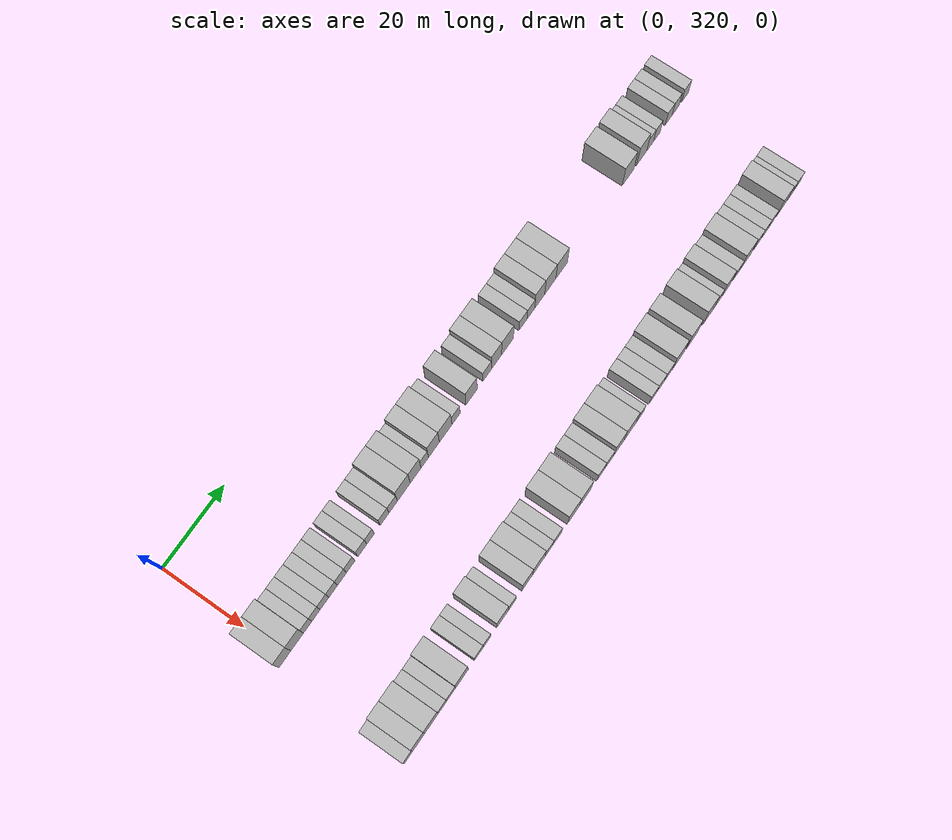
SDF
<sdf version="1.6">
 <world name="default">
  <model name="building_181">
   <static>1</static>
   <pose>25.0000 319.6234 0 0.000000 0.000000 0.000000</pose>
   <link name="link">
    <pose>0 0 4.50 0 0 0</pose>
    <collision name="collision"><geometry><box><size>10.0000 3.8399 9.0000</size></box></geometry></collision>
    <visual name="visual">
     <cast_shadows>0</cast_shadows>
     <geometry><box><size>10.0000 3.8399 9.0000</size></box></geometry>
     <material>
      <script>
       <uri>model://HANNAS_wall/materials/scripts</uri>
       <uri>model://HANNAS_wall/materials/textures</uri>
       <name>vrc/HANNAS_wall</name>
      </script>
     </material>
    </visual>
   </link>
  </model>
  <model name="building_182">
   <static>1</static>
   <pose>25.0000 323.5668 0 0.000000 0.000000 0.000000</pose>
   <link name="link">
    <pose>0 0 4.50 0 0 0</pose>
    <collision name="collision"><geometry><box><size>10.0000 4.0468 9.0000</size></box></geometry></collision>
    <visual name="visual">
     <cast_shadows>0</cast_shadows>
     <geometry><box><size>10.0000 4.0468 9.0000</size></box></geometry>
     <material>
      <script>
       <uri>model://HANNAS_wall/materials/scripts</uri>
       <uri>model://HANNAS_wall/materials/textures</uri>
       <name>vrc/HANNAS_wall</name>
      </script>
     </material>
    </visual>
   </link>
  </model>
  <model name="building_183">
   <static>1</static>
   <pose>25.0000 326.9520 0 0.000000 0.000000 0.000000</pose>
   <link name="link">
    <pose>0 0 3.00 0 0 0</pose>
    <collision name="collision"><geometry><box><size>10.0000 2.7236 6.0000</size></box></geometry></collision>
    <visual name="visual">
     <cast_shadows>0</cast_shadows>
     <geometry><box><size>10.0000 2.7236 6.0000</size></box></geometry>
     <material>
      <script>
       <uri>model://HANNAS_wall/materials/scripts</uri>
       <uri>model://HANNAS_wall/materials/textures</uri>
       <name>vrc/HANNAS_wall</name>
      </script>
     </material>
    </visual>
   </link>
  </model>
  <model name="building_184">
   <static>1</static>
   <pose>25.0000 329.6594 0 0.000000 0.000000 0.000000</pose>
   <link name="link">
    <pose>0 0 3.00 0 0 0</pose>
    <collision name="collision"><geometry><box><size>10.0000 2.6913 6.0000</size></box></geometry></collision>
    <visual name="visual">
     <cast_shadows>0</cast_shadows>
     <geometry><box><size>10.0000 2.6913 6.0000</size></box></geometry>
     <material>
      <script>
       <uri>model://HANNAS_wall/materials/scripts</uri>
       <uri>model://HANNAS_wall/materials/textures</uri>
       <name>vrc/HANNAS_wall</name>
      </script>
     </material>
    </visual>
   </link>
  </model>
  <model name="building_185">
   <static>1</static>
   <pose>25.0000 332.4242 0 0.000000 0.000000 0.000000</pose>
   <link name="link">
    <pose>0 0 3.00 0 0 0</pose>
    <collision name="collision"><geometry><box><size>10.0000 2.8381 6.0000</size></box></geometry></collision>
    <visual name="visual">
     <cast_shadows>0</cast_shadows>
     <geometry><box><size>10.0000 2.8381 6.0000</size></box></geometry>
     <material>
      <script>
       <uri>model://HANNAS_wall/materials/scripts</uri>
       <uri>model://HANNAS_wall/materials/textures</uri>
       <name>vrc/HANNAS_wall</name>
      </script>
     </material>
    </visual>
   </link>
  </model>
  <model name="building_186">
   <static>1</static>
   <pose>25.0000 335.2775 0 0.000000 0.000000 0.000000</pose>
   <link name="link">
    <pose>0 0 3.00 0 0 0</pose>
    <collision name="collision"><geometry><box><size>10.0000 2.8686 6.0000</size></box></geometry></collision>
    <visual name="visual">
     <cast_shadows>0</cast_shadows>
     <geometry><box><size>10.0000 2.8686 6.0000</size></box></geometry>
     <material>
      <script>
       <uri>model://HANNAS_wall/materials/scripts</uri>
       <uri>model://HANNAS_wall/materials/textures</uri>
       <name>vrc/HANNAS_wall</name>
      </script>
     </material>
    </visual>
   </link>
  </model>
  <model name="building_187">
   <static>1</static>
   <pose>25.0000 338.1814 0 0.000000 0.000000 0.000000</pose>
   <link name="link">
    <pose>0 0 3.00 0 0 0</pose>
    <collision name="collision"><geometry><box><size>10.0000 2.9391 6.0000</size></box></geometry></collision>
    <visual name="visual">
     <cast_shadows>0</cast_shadows>
     <geometry><box><size>10.0000 2.9391 6.0000</size></box></geometry>
     <material>
      <script>
       <uri>model://HANNAS_wall/materials/scripts</uri>
       <uri>model://HANNAS_wall/materials/textures</uri>
       <name>vrc/HANNAS_wall</name>
      </script>
     </material>
    </visual>
   </link>
  </model>
  <model name="building_188">
   <static>1</static>
   <pose>25.0000 341.0525 0 0.000000 0.000000 0.000000</pose>
   <link name="link">
    <pose>0 0 3.00 0 0 0</pose>
    <collision name="collision"><geometry><box><size>10.0000 2.8032 6.0000</size></box></geometry></collision>
    <visual name="visual">
     <cast_shadows>0</cast_shadows>
     <geometry><box><size>10.0000 2.8032 6.0000</size></box></geometry>
     <material>
      <script>
       <uri>model://HANNAS_wall/materials/scripts</uri>
       <uri>model://HANNAS_wall/materials/textures</uri>
       <name>vrc/HANNAS_wall</name>
      </script>
     </material>
    </visual>
   </link>
  </model>
  <model name="building_189">
   <static>1</static>
   <pose>25.0000 344.9253 0 0.000000 0.000000 0.000000</pose>
   <link name="link">
    <pose>0 0 3.00 0 0 0</pose>
    <collision name="collision"><geometry><box><size>10.0000 2.9423 6.0000</size></box></geometry></collision>
    <visual name="visual">
     <cast_shadows>0</cast_shadows>
     <geometry><box><size>10.0000 2.9423 6.0000</size></box></geometry>
     <material>
      <script>
       <uri>model://HANNAS_wall/materials/scripts</uri>
       <uri>model://HANNAS_wall/materials/textures</uri>
       <name>vrc/HANNAS_wall</name>
      </script>
     </material>
    </visual>
   </link>
  </model>
  <model name="building_190">
   <static>1</static>
   <pose>25.0000 347.6630 0 0.000000 0.000000 0.000000</pose>
   <link name="link">
    <pose>0 0 3.00 0 0 0</pose>
    <collision name="collision"><geometry><box><size>10.0000 2.5331 6.0000</size></box></geometry></collision>
    <visual name="visual">
     <cast_shadows>0</cast_shadows>
     <geometry><box><size>10.0000 2.5331 6.0000</size></box></geometry>
     <material>
      <script>
       <uri>model://HANNAS_wall/materials/scripts</uri>
       <uri>model://HANNAS_wall/materials/textures</uri>
       <name>vrc/HANNAS_wall</name>
      </script>
     </material>
    </visual>
   </link>
  </model>
  <model name="building_191">
   <static>1</static>
   <pose>25.0000 352.3711 0 0.000000 0.000000 0.000000</pose>
   <link name="link">
    <pose>0 0 3.00 0 0 0</pose>
    <collision name="collision"><geometry><box><size>10.0000 2.8832 6.0000</size></box></geometry></collision>
    <visual name="visual">
     <cast_shadows>0</cast_shadows>
     <geometry><box><size>10.0000 2.8832 6.0000</size></box></geometry>
     <material>
      <script>
       <uri>model://HANNAS_wall/materials/scripts</uri>
       <uri>model://HANNAS_wall/materials/textures</uri>
       <name>vrc/HANNAS_wall</name>
      </script>
     </material>
    </visual>
   </link>
  </model>
  <model name="building_192">
   <static>1</static>
   <pose>25.0000 355.2673 0 0.000000 0.000000 0.000000</pose>
   <link name="link">
    <pose>0 0 3.00 0 0 0</pose>
    <collision name="collision"><geometry><box><size>10.0000 2.9092 6.0000</size></box></geometry></collision>
    <visual name="visual">
     <cast_shadows>0</cast_shadows>
     <geometry><box><size>10.0000 2.9092 6.0000</size></box></geometry>
     <material>
      <script>
       <uri>model://HANNAS_wall/materials/scripts</uri>
       <uri>model://HANNAS_wall/materials/textures</uri>
       <name>vrc/HANNAS_wall</name>
      </script>
     </material>
    </visual>
   </link>
  </model>
  <model name="building_193">
   <static>1</static>
   <pose>25.0000 358.9053 0 0.000000 0.000000 0.000000</pose>
   <link name="link">
    <pose>0 0 4.50 0 0 0</pose>
    <collision name="collision"><geometry><box><size>10.0000 4.3668 9.0000</size></box></geometry></collision>
    <visual name="visual">
     <cast_shadows>0</cast_shadows>
     <geometry><box><size>10.0000 4.3668 9.0000</size></box></geometry>
     <material>
      <script>
       <uri>model://HANNAS_wall/materials/scripts</uri>
       <uri>model://HANNAS_wall/materials/textures</uri>
       <name>vrc/HANNAS_wall</name>
      </script>
     </material>
    </visual>
   </link>
  </model>
  <model name="building_194">
   <static>1</static>
   <pose>25.0000 362.9234 0 0.000000 0.000000 0.000000</pose>
   <link name="link">
    <pose>0 0 4.50 0 0 0</pose>
    <collision name="collision"><geometry><box><size>10.0000 3.6693 9.0000</size></box></geometry></collision>
    <visual name="visual">
     <cast_shadows>0</cast_shadows>
     <geometry><box><size>10.0000 3.6693 9.0000</size></box></geometry>
     <material>
      <script>
       <uri>model://HANNAS_wall/materials/scripts</uri>
       <uri>model://HANNAS_wall/materials/textures</uri>
       <name>vrc/HANNAS_wall</name>
      </script>
     </material>
    </visual>
   </link>
  </model>
  <model name="building_195">
   <static>1</static>
   <pose>25.0000 366.0402 0 0.000000 0.000000 0.000000</pose>
   <link name="link">
    <pose>0 0 3.00 0 0 0</pose>
    <collision name="collision"><geometry><box><size>10.0000 2.5643 6.0000</size></box></geometry></collision>
    <visual name="visual">
     <cast_shadows>0</cast_shadows>
     <geometry><box><size>10.0000 2.5643 6.0000</size></box></geometry>
     <material>
      <script>
       <uri>model://HANNAS_wall/materials/scripts</uri>
       <uri>model://HANNAS_wall/materials/textures</uri>
       <name>vrc/HANNAS_wall</name>
      </script>
     </material>
    </visual>
   </link>
  </model>
  <model name="building_196">
   <static>1</static>
   <pose>25.0000 369.1925 0 0.000000 0.000000 0.000000</pose>
   <link name="link">
    <pose>0 0 4.50 0 0 0</pose>
    <collision name="collision"><geometry><box><size>10.0000 3.7402 9.0000</size></box></geometry></collision>
    <visual name="visual">
     <cast_shadows>0</cast_shadows>
     <geometry><box><size>10.0000 3.7402 9.0000</size></box></geometry>
     <material>
      <script>
       <uri>model://HANNAS_wall/materials/scripts</uri>
       <uri>model://HANNAS_wall/materials/textures</uri>
       <name>vrc/HANNAS_wall</name>
      </script>
     </material>
    </visual>
   </link>
  </model>
  <model name="building_197">
   <static>1</static>
   <pose>25.0000 373.2283 0 0.000000 0.000000 0.000000</pose>
   <link name="link">
    <pose>0 0 4.50 0 0 0</pose>
    <collision name="collision"><geometry><box><size>10.0000 4.3314 9.0000</size></box></geometry></collision>
    <visual name="visual">
     <cast_shadows>0</cast_shadows>
     <geometry><box><size>10.0000 4.3314 9.0000</size></box></geometry>
     <material>
      <script>
       <uri>model://HANNAS_wall/materials/scripts</uri>
       <uri>model://HANNAS_wall/materials/textures</uri>
       <name>vrc/HANNAS_wall</name>
      </script>
     </material>
    </visual>
   </link>
  </model>
  <model name="building_198">
   <static>1</static>
   <pose>25.0000 376.8318 0 0.000000 0.000000 0.000000</pose>
   <link name="link">
    <pose>0 0 3.00 0 0 0</pose>
    <collision name="collision"><geometry><box><size>10.0000 2.8757 6.0000</size></box></geometry></collision>
    <visual name="visual">
     <cast_shadows>0</cast_shadows>
     <geometry><box><size>10.0000 2.8757 6.0000</size></box></geometry>
     <material>
      <script>
       <uri>model://HANNAS_wall/materials/scripts</uri>
       <uri>model://HANNAS_wall/materials/textures</uri>
       <name>vrc/HANNAS_wall</name>
      </script>
     </material>
    </visual>
   </link>
  </model>
  <model name="building_199">
   <static>1</static>
   <pose>25.0000 382.2647 0 0.000000 0.000000 0.000000</pose>
   <link name="link">
    <pose>0 0 4.50 0 0 0</pose>
    <collision name="collision"><geometry><box><size>10.0000 3.9901 9.0000</size></box></geometry></collision>
    <visual name="visual">
     <cast_shadows>0</cast_shadows>
     <geometry><box><size>10.0000 3.9901 9.0000</size></box></geometry>
     <material>
      <script>
       <uri>model://HANNAS_wall/materials/scripts</uri>
       <uri>model://HANNAS_wall/materials/textures</uri>
       <name>vrc/HANNAS_wall</name>
      </script>
     </material>
    </visual>
   </link>
  </model>
  <model name="building_200">
   <static>1</static>
   <pose>25.0000 387.7512 0 0.000000 0.000000 0.000000</pose>
   <link name="link">
    <pose>0 0 3.00 0 0 0</pose>
    <collision name="collision"><geometry><box><size>10.0000 2.9829 6.0000</size></box></geometry></collision>
    <visual name="visual">
     <cast_shadows>0</cast_shadows>
     <geometry><box><size>10.0000 2.9829 6.0000</size></box></geometry>
     <material>
      <script>
       <uri>model://HANNAS_wall/materials/scripts</uri>
       <uri>model://HANNAS_wall/materials/textures</uri>
       <name>vrc/HANNAS_wall</name>
      </script>
     </material>
    </visual>
   </link>
  </model>
  <model name="building_201">
   <static>1</static>
   <pose>25.0000 391.0484 0 0.000000 0.000000 0.000000</pose>
   <link name="link">
    <pose>0 0 4.50 0 0 0</pose>
    <collision name="collision"><geometry><box><size>10.0000 3.6115 9.0000</size></box></geometry></collision>
    <visual name="visual">
     <cast_shadows>0</cast_shadows>
     <geometry><box><size>10.0000 3.6115 9.0000</size></box></geometry>
     <material>
      <script>
       <uri>model://HANNAS_wall/materials/scripts</uri>
       <uri>model://HANNAS_wall/materials/textures</uri>
       <name>vrc/HANNAS_wall</name>
      </script>
     </material>
    </visual>
   </link>
  </model>
  <model name="building_202">
   <static>1</static>
   <pose>25.0000 394.9687 0 0.000000 0.000000 0.000000</pose>
   <link name="link">
    <pose>0 0 4.50 0 0 0</pose>
    <collision name="collision"><geometry><box><size>10.0000 4.2291 9.0000</size></box></geometry></collision>
    <visual name="visual">
     <cast_shadows>0</cast_shadows>
     <geometry><box><size>10.0000 4.2291 9.0000</size></box></geometry>
     <material>
      <script>
       <uri>model://HANNAS_wall/materials/scripts</uri>
       <uri>model://HANNAS_wall/materials/textures</uri>
       <name>vrc/HANNAS_wall</name>
      </script>
     </material>
    </visual>
   </link>
  </model>
  <model name="building_203">
   <static>1</static>
   <pose>25.0000 400.5490 0 0.000000 0.000000 0.000000</pose>
   <link name="link">
    <pose>0 0 3.00 0 0 0</pose>
    <collision name="collision"><geometry><box><size>10.0000 2.9315 6.0000</size></box></geometry></collision>
    <visual name="visual">
     <cast_shadows>0</cast_shadows>
     <geometry><box><size>10.0000 2.9315 6.0000</size></box></geometry>
     <material>
      <script>
       <uri>model://HANNAS_wall/materials/scripts</uri>
       <uri>model://HANNAS_wall/materials/textures</uri>
       <name>vrc/HANNAS_wall</name>
      </script>
     </material>
    </visual>
   </link>
  </model>
  <model name="building_204">
   <static>1</static>
   <pose>25.0000 403.3842 0 0.000000 0.000000 0.000000</pose>
   <link name="link">
    <pose>0 0 3.00 0 0 0</pose>
    <collision name="collision"><geometry><box><size>10.0000 2.7390 6.0000</size></box></geometry></collision>
    <visual name="visual">
     <cast_shadows>0</cast_shadows>
     <geometry><box><size>10.0000 2.7390 6.0000</size></box></geometry>
     <material>
      <script>
       <uri>model://HANNAS_wall/materials/scripts</uri>
       <uri>model://HANNAS_wall/materials/textures</uri>
       <name>vrc/HANNAS_wall</name>
      </script>
     </material>
    </visual>
   </link>
  </model>
  <model name="building_205">
   <static>1</static>
   <pose>25.0000 406.5617 0 0.000000 0.000000 0.000000</pose>
   <link name="link">
    <pose>0 0 4.50 0 0 0</pose>
    <collision name="collision"><geometry><box><size>10.0000 3.6159 9.0000</size></box></geometry></collision>
    <visual name="visual">
     <cast_shadows>0</cast_shadows>
     <geometry><box><size>10.0000 3.6159 9.0000</size></box></geometry>
     <material>
      <script>
       <uri>model://HANNAS_wall/materials/scripts</uri>
       <uri>model://HANNAS_wall/materials/textures</uri>
       <name>vrc/HANNAS_wall</name>
      </script>
     </material>
    </visual>
   </link>
  </model>
  <model name="building_206">
   <static>1</static>
   <pose>25.0000 410.4006 0 0.000000 0.000000 0.000000</pose>
   <link name="link">
    <pose>0 0 4.50 0 0 0</pose>
    <collision name="collision"><geometry><box><size>10.0000 4.0619 9.0000</size></box></geometry></collision>
    <visual name="visual">
     <cast_shadows>0</cast_shadows>
     <geometry><box><size>10.0000 4.0619 9.0000</size></box></geometry>
     <material>
      <script>
       <uri>model://HANNAS_wall/materials/scripts</uri>
       <uri>model://HANNAS_wall/materials/textures</uri>
       <name>vrc/HANNAS_wall</name>
      </script>
     </material>
    </visual>
   </link>
  </model>
  <model name="building_207">
   <static>1</static>
   <pose>25.0000 414.5550 0 0.000000 0.000000 0.000000</pose>
   <link name="link">
    <pose>0 0 4.50 0 0 0</pose>
    <collision name="collision"><geometry><box><size>10.0000 4.2469 9.0000</size></box></geometry></collision>
    <visual name="visual">
     <cast_shadows>0</cast_shadows>
     <geometry><box><size>10.0000 4.2469 9.0000</size></box></geometry>
     <material>
      <script>
       <uri>model://HANNAS_wall/materials/scripts</uri>
       <uri>model://HANNAS_wall/materials/textures</uri>
       <name>vrc/HANNAS_wall</name>
      </script>
     </material>
    </visual>
   </link>
  </model>
  <model name="building_208">
   <static>1</static>
   <pose>25.0000 439.3719 0 0.000000 0.000000 0.000000</pose>
   <link name="link">
    <pose>0 0 4.50 0 0 0</pose>
    <collision name="collision"><geometry><box><size>10.0000 4.4623 9.0000</size></box></geometry></collision>
    <visual name="visual">
     <cast_shadows>0</cast_shadows>
     <geometry><box><size>10.0000 4.4623 9.0000</size></box></geometry>
     <material>
      <script>
       <uri>model://HANNAS_wall/materials/scripts</uri>
       <uri>model://HANNAS_wall/materials/textures</uri>
       <name>vrc/HANNAS_wall</name>
      </script>
     </material>
    </visual>
   </link>
  </model>
  <model name="building_209">
   <static>1</static>
   <pose>25.0000 444.5277 0 0.000000 0.000000 0.000000</pose>
   <link name="link">
    <pose>0 0 4.50 0 0 0</pose>
    <collision name="collision"><geometry><box><size>10.0000 3.8493 9.0000</size></box></geometry></collision>
    <visual name="visual">
     <cast_shadows>0</cast_shadows>
     <geometry><box><size>10.0000 3.8493 9.0000</size></box></geometry>
     <material>
      <script>
       <uri>model://HANNAS_wall/materials/scripts</uri>
       <uri>model://HANNAS_wall/materials/textures</uri>
       <name>vrc/HANNAS_wall</name>
      </script>
     </material>
    </visual>
   </link>
  </model>
  <model name="building_210">
   <static>1</static>
   <pose>25.0000 447.7719 0 0.000000 0.000000 0.000000</pose>
   <link name="link">
    <pose>0 0 3.00 0 0 0</pose>
    <collision name="collision"><geometry><box><size>10.0000 2.6390 6.0000</size></box></geometry></collision>
    <visual name="visual">
     <cast_shadows>0</cast_shadows>
     <geometry><box><size>10.0000 2.6390 6.0000</size></box></geometry>
     <material>
      <script>
       <uri>model://HANNAS_wall/materials/scripts</uri>
       <uri>model://HANNAS_wall/materials/textures</uri>
       <name>vrc/HANNAS_wall</name>
      </script>
     </material>
    </visual>
   </link>
  </model>
  <model name="building_211">
   <static>1</static>
   <pose>25.0000 450.3410 0 0.000000 0.000000 0.000000</pose>
   <link name="link">
    <pose>0 0 3.00 0 0 0</pose>
    <collision name="collision"><geometry><box><size>10.0000 2.4993 6.0000</size></box></geometry></collision>
    <visual name="visual">
     <cast_shadows>0</cast_shadows>
     <geometry><box><size>10.0000 2.4993 6.0000</size></box></geometry>
     <material>
      <script>
       <uri>model://HANNAS_wall/materials/scripts</uri>
       <uri>model://HANNAS_wall/materials/textures</uri>
       <name>vrc/HANNAS_wall</name>
      </script>
     </material>
    </visual>
   </link>
  </model>
  <model name="building_212">
   <static>1</static>
   <pose>25.0000 454.9144 0 0.000000 0.000000 0.000000</pose>
   <link name="link">
    <pose>0 0 3.00 0 0 0</pose>
    <collision name="collision"><geometry><box><size>10.0000 2.6476 6.0000</size></box></geometry></collision>
    <visual name="visual">
     <cast_shadows>0</cast_shadows>
     <geometry><box><size>10.0000 2.6476 6.0000</size></box></geometry>
     <material>
      <script>
       <uri>model://HANNAS_wall/materials/scripts</uri>
       <uri>model://HANNAS_wall/materials/textures</uri>
       <name>vrc/HANNAS_wall</name>
      </script>
     </material>
    </visual>
   </link>
  </model>
  <model name="building_213">
   <static>1</static>
   <pose>25.0000 457.6052 0 0.000000 0.000000 0.000000</pose>
   <link name="link">
    <pose>0 0 3.00 0 0 0</pose>
    <collision name="collision"><geometry><box><size>10.0000 2.7340 6.0000</size></box></geometry></collision>
    <visual name="visual">
     <cast_shadows>0</cast_shadows>
     <geometry><box><size>10.0000 2.7340 6.0000</size></box></geometry>
     <material>
      <script>
       <uri>model://HANNAS_wall/materials/scripts</uri>
       <uri>model://HANNAS_wall/materials/textures</uri>
       <name>vrc/HANNAS_wall</name>
      </script>
     </material>
    </visual>
   </link>
  </model>
  <model name="building_214">
   <static>1</static>
   <pose>25.0000 461.3113 0 0.000000 0.000000 0.000000</pose>
   <link name="link">
    <pose>0 0 3.00 0 0 0</pose>
    <collision name="collision"><geometry><box><size>10.0000 2.6782 6.0000</size></box></geometry></collision>
    <visual name="visual">
     <cast_shadows>0</cast_shadows>
     <geometry><box><size>10.0000 2.6782 6.0000</size></box></geometry>
     <material>
      <script>
       <uri>model://HANNAS_wall/materials/scripts</uri>
       <uri>model://HANNAS_wall/materials/textures</uri>
       <name>vrc/HANNAS_wall</name>
      </script>
     </material>
    </visual>
   </link>
  </model>
  <model name="building_416">
   <static>1</static>
   <pose>55.0000 318.2169 0 0.000000 0.000000 0.000000</pose>
   <link name="link">
    <pose>0 0 3.00 0 0 0</pose>
    <collision name="collision"><geometry><box><size>10.0000 2.8488 6.0000</size></box></geometry></collision>
    <visual name="visual">
     <cast_shadows>0</cast_shadows>
     <geometry><box><size>10.0000 2.8488 6.0000</size></box></geometry>
     <material>
      <script>
       <uri>model://HANNAS_wall/materials/scripts</uri>
       <uri>model://HANNAS_wall/materials/textures</uri>
       <name>vrc/HANNAS_wall</name>
      </script>
     </material>
    </visual>
   </link>
  </model>
  <model name="building_417">
   <static>1</static>
   <pose>55.0000 321.5966 0 0.000000 0.000000 0.000000</pose>
   <link name="link">
    <pose>0 0 4.50 0 0 0</pose>
    <collision name="collision"><geometry><box><size>10.0000 3.9107 9.0000</size></box></geometry></collision>
    <visual name="visual">
     <cast_shadows>0</cast_shadows>
     <geometry><box><size>10.0000 3.9107 9.0000</size></box></geometry>
     <material>
      <script>
       <uri>model://HANNAS_wall/materials/scripts</uri>
       <uri>model://HANNAS_wall/materials/textures</uri>
       <name>vrc/HANNAS_wall</name>
      </script>
     </material>
    </visual>
   </link>
  </model>
  <model name="building_418">
   <static>1</static>
   <pose>55.0000 325.7583 0 0.000000 0.000000 0.000000</pose>
   <link name="link">
    <pose>0 0 4.50 0 0 0</pose>
    <collision name="collision"><geometry><box><size>10.0000 4.4127 9.0000</size></box></geometry></collision>
    <visual name="visual">
     <cast_shadows>0</cast_shadows>
     <geometry><box><size>10.0000 4.4127 9.0000</size></box></geometry>
     <material>
      <script>
       <uri>model://HANNAS_wall/materials/scripts</uri>
       <uri>model://HANNAS_wall/materials/textures</uri>
       <name>vrc/HANNAS_wall</name>
      </script>
     </material>
    </visual>
   </link>
  </model>
  <model name="building_419">
   <static>1</static>
   <pose>55.0000 329.3405 0 0.000000 0.000000 0.000000</pose>
   <link name="link">
    <pose>0 0 3.00 0 0 0</pose>
    <collision name="collision"><geometry><box><size>10.0000 2.7517 6.0000</size></box></geometry></collision>
    <visual name="visual">
     <cast_shadows>0</cast_shadows>
     <geometry><box><size>10.0000 2.7517 6.0000</size></box></geometry>
     <material>
      <script>
       <uri>model://HANNAS_wall/materials/scripts</uri>
       <uri>model://HANNAS_wall/materials/textures</uri>
       <name>vrc/HANNAS_wall</name>
      </script>
     </material>
    </visual>
   </link>
  </model>
  <model name="building_420">
   <static>1</static>
   <pose>55.0000 332.1954 0 0.000000 0.000000 0.000000</pose>
   <link name="link">
    <pose>0 0 3.00 0 0 0</pose>
    <collision name="collision"><geometry><box><size>10.0000 2.9580 6.0000</size></box></geometry></collision>
    <visual name="visual">
     <cast_shadows>0</cast_shadows>
     <geometry><box><size>10.0000 2.9580 6.0000</size></box></geometry>
     <material>
      <script>
       <uri>model://HANNAS_wall/materials/scripts</uri>
       <uri>model://HANNAS_wall/materials/textures</uri>
       <name>vrc/HANNAS_wall</name>
      </script>
     </material>
    </visual>
   </link>
  </model>
  <model name="building_421">
   <static>1</static>
   <pose>55.0000 335.7936 0 0.000000 0.000000 0.000000</pose>
   <link name="link">
    <pose>0 0 4.50 0 0 0</pose>
    <collision name="collision"><geometry><box><size>10.0000 4.2384 9.0000</size></box></geometry></collision>
    <visual name="visual">
     <cast_shadows>0</cast_shadows>
     <geometry><box><size>10.0000 4.2384 9.0000</size></box></geometry>
     <material>
      <script>
       <uri>model://HANNAS_wall/materials/scripts</uri>
       <uri>model://HANNAS_wall/materials/textures</uri>
       <name>vrc/HANNAS_wall</name>
      </script>
     </material>
    </visual>
   </link>
  </model>
  <model name="building_422">
   <static>1</static>
   <pose>55.0000 341.3906 0 0.000000 0.000000 0.000000</pose>
   <link name="link">
    <pose>0 0 3.00 0 0 0</pose>
    <collision name="collision"><geometry><box><size>10.0000 2.9558 6.0000</size></box></geometry></collision>
    <visual name="visual">
     <cast_shadows>0</cast_shadows>
     <geometry><box><size>10.0000 2.9558 6.0000</size></box></geometry>
     <material>
      <script>
       <uri>model://HANNAS_wall/materials/scripts</uri>
       <uri>model://HANNAS_wall/materials/textures</uri>
       <name>vrc/HANNAS_wall</name>
      </script>
     </material>
    </visual>
   </link>
  </model>
  <model name="building_423">
   <static>1</static>
   <pose>55.0000 344.1561 0 0.000000 0.000000 0.000000</pose>
   <link name="link">
    <pose>0 0 3.00 0 0 0</pose>
    <collision name="collision"><geometry><box><size>10.0000 2.5752 6.0000</size></box></geometry></collision>
    <visual name="visual">
     <cast_shadows>0</cast_shadows>
     <geometry><box><size>10.0000 2.5752 6.0000</size></box></geometry>
     <material>
      <script>
       <uri>model://HANNAS_wall/materials/scripts</uri>
       <uri>model://HANNAS_wall/materials/textures</uri>
       <name>vrc/HANNAS_wall</name>
      </script>
     </material>
    </visual>
   </link>
  </model>
  <model name="building_424">
   <static>1</static>
   <pose>55.0000 349.4092 0 0.000000 0.000000 0.000000</pose>
   <link name="link">
    <pose>0 0 4.50 0 0 0</pose>
    <collision name="collision"><geometry><box><size>10.0000 3.9309 9.0000</size></box></geometry></collision>
    <visual name="visual">
     <cast_shadows>0</cast_shadows>
     <geometry><box><size>10.0000 3.9309 9.0000</size></box></geometry>
     <material>
      <script>
       <uri>model://HANNAS_wall/materials/scripts</uri>
       <uri>model://HANNAS_wall/materials/textures</uri>
       <name>vrc/HANNAS_wall</name>
      </script>
     </material>
    </visual>
   </link>
  </model>
  <model name="building_425">
   <static>1</static>
   <pose>55.0000 352.6966 0 0.000000 0.000000 0.000000</pose>
   <link name="link">
    <pose>0 0 3.00 0 0 0</pose>
    <collision name="collision"><geometry><box><size>10.0000 2.6440 6.0000</size></box></geometry></collision>
    <visual name="visual">
     <cast_shadows>0</cast_shadows>
     <geometry><box><size>10.0000 2.6440 6.0000</size></box></geometry>
     <material>
      <script>
       <uri>model://HANNAS_wall/materials/scripts</uri>
       <uri>model://HANNAS_wall/materials/textures</uri>
       <name>vrc/HANNAS_wall</name>
      </script>
     </material>
    </visual>
   </link>
  </model>
  <model name="building_426">
   <static>1</static>
   <pose>55.0000 357.8667 0 0.000000 0.000000 0.000000</pose>
   <link name="link">
    <pose>0 0 4.50 0 0 0</pose>
    <collision name="collision"><geometry><box><size>10.0000 3.6962 9.0000</size></box></geometry></collision>
    <visual name="visual">
     <cast_shadows>0</cast_shadows>
     <geometry><box><size>10.0000 3.6962 9.0000</size></box></geometry>
     <material>
      <script>
       <uri>model://HANNAS_wall/materials/scripts</uri>
       <uri>model://HANNAS_wall/materials/textures</uri>
       <name>vrc/HANNAS_wall</name>
      </script>
     </material>
    </visual>
   </link>
  </model>
  <model name="building_427">
   <static>1</static>
   <pose>55.0000 361.8536 0 0.000000 0.000000 0.000000</pose>
   <link name="link">
    <pose>0 0 4.50 0 0 0</pose>
    <collision name="collision"><geometry><box><size>10.0000 4.2776 9.0000</size></box></geometry></collision>
    <visual name="visual">
     <cast_shadows>0</cast_shadows>
     <geometry><box><size>10.0000 4.2776 9.0000</size></box></geometry>
     <material>
      <script>
       <uri>model://HANNAS_wall/materials/scripts</uri>
       <uri>model://HANNAS_wall/materials/textures</uri>
       <name>vrc/HANNAS_wall</name>
      </script>
     </material>
    </visual>
   </link>
  </model>
  <model name="building_428">
   <static>1</static>
   <pose>55.0000 365.4075 0 0.000000 0.000000 0.000000</pose>
   <link name="link">
    <pose>0 0 3.00 0 0 0</pose>
    <collision name="collision"><geometry><box><size>10.0000 2.8302 6.0000</size></box></geometry></collision>
    <visual name="visual">
     <cast_shadows>0</cast_shadows>
     <geometry><box><size>10.0000 2.8302 6.0000</size></box></geometry>
     <material>
      <script>
       <uri>model://HANNAS_wall/materials/scripts</uri>
       <uri>model://HANNAS_wall/materials/textures</uri>
       <name>vrc/HANNAS_wall</name>
      </script>
     </material>
    </visual>
   </link>
  </model>
  <model name="building_429">
   <static>1</static>
   <pose>55.0000 368.3033 0 0.000000 0.000000 0.000000</pose>
   <link name="link">
    <pose>0 0 3.00 0 0 0</pose>
    <collision name="collision"><geometry><box><size>10.0000 2.9615 6.0000</size></box></geometry></collision>
    <visual name="visual">
     <cast_shadows>0</cast_shadows>
     <geometry><box><size>10.0000 2.9615 6.0000</size></box></geometry>
     <material>
      <script>
       <uri>model://HANNAS_wall/materials/scripts</uri>
       <uri>model://HANNAS_wall/materials/textures</uri>
       <name>vrc/HANNAS_wall</name>
      </script>
     </material>
    </visual>
   </link>
  </model>
  <model name="building_430">
   <static>1</static>
   <pose>55.0000 373.9060 0 0.000000 0.000000 0.000000</pose>
   <link name="link">
    <pose>0 0 4.50 0 0 0</pose>
    <collision name="collision"><geometry><box><size>10.0000 4.2438 9.0000</size></box></geometry></collision>
    <visual name="visual">
     <cast_shadows>0</cast_shadows>
     <geometry><box><size>10.0000 4.2438 9.0000</size></box></geometry>
     <material>
      <script>
       <uri>model://HANNAS_wall/materials/scripts</uri>
       <uri>model://HANNAS_wall/materials/textures</uri>
       <name>vrc/HANNAS_wall</name>
      </script>
     </material>
    </visual>
   </link>
  </model>
  <model name="building_431">
   <static>1</static>
   <pose>55.0000 378.1146 0 0.000000 0.000000 0.000000</pose>
   <link name="link">
    <pose>0 0 4.50 0 0 0</pose>
    <collision name="collision"><geometry><box><size>10.0000 4.1735 9.0000</size></box></geometry></collision>
    <visual name="visual">
     <cast_shadows>0</cast_shadows>
     <geometry><box><size>10.0000 4.1735 9.0000</size></box></geometry>
     <material>
      <script>
       <uri>model://HANNAS_wall/materials/scripts</uri>
       <uri>model://HANNAS_wall/materials/textures</uri>
       <name>vrc/HANNAS_wall</name>
      </script>
     </material>
    </visual>
   </link>
  </model>
  <model name="building_432">
   <static>1</static>
   <pose>55.0000 383.6836 0 0.000000 0.000000 0.000000</pose>
   <link name="link">
    <pose>0 0 3.00 0 0 0</pose>
    <collision name="collision"><geometry><box><size>10.0000 2.9644 6.0000</size></box></geometry></collision>
    <visual name="visual">
     <cast_shadows>0</cast_shadows>
     <geometry><box><size>10.0000 2.9644 6.0000</size></box></geometry>
     <material>
      <script>
       <uri>model://HANNAS_wall/materials/scripts</uri>
       <uri>model://HANNAS_wall/materials/textures</uri>
       <name>vrc/HANNAS_wall</name>
      </script>
     </material>
    </visual>
   </link>
  </model>
  <model name="building_433">
   <static>1</static>
   <pose>55.0000 386.6343 0 0.000000 0.000000 0.000000</pose>
   <link name="link">
    <pose>0 0 3.00 0 0 0</pose>
    <collision name="collision"><geometry><box><size>10.0000 2.9370 6.0000</size></box></geometry></collision>
    <visual name="visual">
     <cast_shadows>0</cast_shadows>
     <geometry><box><size>10.0000 2.9370 6.0000</size></box></geometry>
     <material>
      <script>
       <uri>model://HANNAS_wall/materials/scripts</uri>
       <uri>model://HANNAS_wall/materials/textures</uri>
       <name>vrc/HANNAS_wall</name>
      </script>
     </material>
    </visual>
   </link>
  </model>
  <model name="building_434">
   <static>1</static>
   <pose>55.0000 390.0293 0 0.000000 0.000000 0.000000</pose>
   <link name="link">
    <pose>0 0 4.50 0 0 0</pose>
    <collision name="collision"><geometry><box><size>10.0000 3.8531 9.0000</size></box></geometry></collision>
    <visual name="visual">
     <cast_shadows>0</cast_shadows>
     <geometry><box><size>10.0000 3.8531 9.0000</size></box></geometry>
     <material>
      <script>
       <uri>model://HANNAS_wall/materials/scripts</uri>
       <uri>model://HANNAS_wall/materials/textures</uri>
       <name>vrc/HANNAS_wall</name>
      </script>
     </material>
    </visual>
   </link>
  </model>
  <model name="building_435">
   <static>1</static>
   <pose>55.0000 394.2009 0 0.000000 0.000000 0.000000</pose>
   <link name="link">
    <pose>0 0 4.50 0 0 0</pose>
    <collision name="collision"><geometry><box><size>10.0000 4.4900 9.0000</size></box></geometry></collision>
    <visual name="visual">
     <cast_shadows>0</cast_shadows>
     <geometry><box><size>10.0000 4.4900 9.0000</size></box></geometry>
     <material>
      <script>
       <uri>model://HANNAS_wall/materials/scripts</uri>
       <uri>model://HANNAS_wall/materials/textures</uri>
       <name>vrc/HANNAS_wall</name>
      </script>
     </material>
    </visual>
   </link>
  </model>
  <model name="building_436">
   <static>1</static>
   <pose>55.0000 397.7735 0 0.000000 0.000000 0.000000</pose>
   <link name="link">
    <pose>0 0 3.00 0 0 0</pose>
    <collision name="collision"><geometry><box><size>10.0000 2.6552 6.0000</size></box></geometry></collision>
    <visual name="visual">
     <cast_shadows>0</cast_shadows>
     <geometry><box><size>10.0000 2.6552 6.0000</size></box></geometry>
     <material>
      <script>
       <uri>model://HANNAS_wall/materials/scripts</uri>
       <uri>model://HANNAS_wall/materials/textures</uri>
       <name>vrc/HANNAS_wall</name>
      </script>
     </material>
    </visual>
   </link>
  </model>
  <model name="building_437">
   <static>1</static>
   <pose>55.0000 402.4761 0 0.000000 0.000000 0.000000</pose>
   <link name="link">
    <pose>0 0 3.00 0 0 0</pose>
    <collision name="collision"><geometry><box><size>10.0000 2.7500 6.0000</size></box></geometry></collision>
    <visual name="visual">
     <cast_shadows>0</cast_shadows>
     <geometry><box><size>10.0000 2.7500 6.0000</size></box></geometry>
     <material>
      <script>
       <uri>model://HANNAS_wall/materials/scripts</uri>
       <uri>model://HANNAS_wall/materials/textures</uri>
       <name>vrc/HANNAS_wall</name>
      </script>
     </material>
    </visual>
   </link>
  </model>
  <model name="building_438">
   <static>1</static>
   <pose>55.0000 405.3012 0 0.000000 0.000000 0.000000</pose>
   <link name="link">
    <pose>0 0 3.00 0 0 0</pose>
    <collision name="collision"><geometry><box><size>10.0000 2.9002 6.0000</size></box></geometry></collision>
    <visual name="visual">
     <cast_shadows>0</cast_shadows>
     <geometry><box><size>10.0000 2.9002 6.0000</size></box></geometry>
     <material>
      <script>
       <uri>model://HANNAS_wall/materials/scripts</uri>
       <uri>model://HANNAS_wall/materials/textures</uri>
       <name>vrc/HANNAS_wall</name>
      </script>
     </material>
    </visual>
   </link>
  </model>
  <model name="building_439">
   <static>1</static>
   <pose>55.0000 408.1891 0 0.000000 0.000000 0.000000</pose>
   <link name="link">
    <pose>0 0 3.00 0 0 0</pose>
    <collision name="collision"><geometry><box><size>10.0000 2.8757 6.0000</size></box></geometry></collision>
    <visual name="visual">
     <cast_shadows>0</cast_shadows>
     <geometry><box><size>10.0000 2.8757 6.0000</size></box></geometry>
     <material>
      <script>
       <uri>model://HANNAS_wall/materials/scripts</uri>
       <uri>model://HANNAS_wall/materials/textures</uri>
       <name>vrc/HANNAS_wall</name>
      </script>
     </material>
    </visual>
   </link>
  </model>
  <model name="building_440">
   <static>1</static>
   <pose>55.0000 411.8631 0 0.000000 0.000000 0.000000</pose>
   <link name="link">
    <pose>0 0 4.50 0 0 0</pose>
    <collision name="collision"><geometry><box><size>10.0000 4.4723 9.0000</size></box></geometry></collision>
    <visual name="visual">
     <cast_shadows>0</cast_shadows>
     <geometry><box><size>10.0000 4.4723 9.0000</size></box></geometry>
     <material>
      <script>
       <uri>model://HANNAS_wall/materials/scripts</uri>
       <uri>model://HANNAS_wall/materials/textures</uri>
       <name>vrc/HANNAS_wall</name>
      </script>
     </material>
    </visual>
   </link>
  </model>
  <model name="building_441">
   <static>1</static>
   <pose>55.0000 417.0918 0 0.000000 0.000000 0.000000</pose>
   <link name="link">
    <pose>0 0 4.50 0 0 0</pose>
    <collision name="collision"><geometry><box><size>10.0000 3.9852 9.0000</size></box></geometry></collision>
    <visual name="visual">
     <cast_shadows>0</cast_shadows>
     <geometry><box><size>10.0000 3.9852 9.0000</size></box></geometry>
     <material>
      <script>
       <uri>model://HANNAS_wall/materials/scripts</uri>
       <uri>model://HANNAS_wall/materials/textures</uri>
       <name>vrc/HANNAS_wall</name>
      </script>
     </material>
    </visual>
   </link>
  </model>
  <model name="building_442">
   <static>1</static>
   <pose>55.0000 423.1290 0 0.000000 0.000000 0.000000</pose>
   <link name="link">
    <pose>0 0 4.50 0 0 0</pose>
    <collision name="collision"><geometry><box><size>10.0000 4.0891 9.0000</size></box></geometry></collision>
    <visual name="visual">
     <cast_shadows>0</cast_shadows>
     <geometry><box><size>10.0000 4.0891 9.0000</size></box></geometry>
     <material>
      <script>
       <uri>model://HANNAS_wall/materials/scripts</uri>
       <uri>model://HANNAS_wall/materials/textures</uri>
       <name>vrc/HANNAS_wall</name>
      </script>
     </material>
    </visual>
   </link>
  </model>
  <model name="building_443">
   <static>1</static>
   <pose>55.0000 426.5500 0 0.000000 0.000000 0.000000</pose>
   <link name="link">
    <pose>0 0 3.00 0 0 0</pose>
    <collision name="collision"><geometry><box><size>10.0000 2.7530 6.0000</size></box></geometry></collision>
    <visual name="visual">
     <cast_shadows>0</cast_shadows>
     <geometry><box><size>10.0000 2.7530 6.0000</size></box></geometry>
     <material>
      <script>
       <uri>model://HANNAS_wall/materials/scripts</uri>
       <uri>model://HANNAS_wall/materials/textures</uri>
       <name>vrc/HANNAS_wall</name>
      </script>
     </material>
    </visual>
   </link>
  </model>
  <model name="building_444">
   <static>1</static>
   <pose>55.0000 429.7274 0 0.000000 0.000000 0.000000</pose>
   <link name="link">
    <pose>0 0 4.50 0 0 0</pose>
    <collision name="collision"><geometry><box><size>10.0000 3.6017 9.0000</size></box></geometry></collision>
    <visual name="visual">
     <cast_shadows>0</cast_shadows>
     <geometry><box><size>10.0000 3.6017 9.0000</size></box></geometry>
     <material>
      <script>
       <uri>model://HANNAS_wall/materials/scripts</uri>
       <uri>model://HANNAS_wall/materials/textures</uri>
       <name>vrc/HANNAS_wall</name>
      </script>
     </material>
    </visual>
   </link>
  </model>
  <model name="building_445">
   <static>1</static>
   <pose>55.0000 433.8944 0 0.000000 0.000000 0.000000</pose>
   <link name="link">
    <pose>0 0 3.00 0 0 0</pose>
    <collision name="collision"><geometry><box><size>10.0000 2.7323 6.0000</size></box></geometry></collision>
    <visual name="visual">
     <cast_shadows>0</cast_shadows>
     <geometry><box><size>10.0000 2.7323 6.0000</size></box></geometry>
     <material>
      <script>
       <uri>model://HANNAS_wall/materials/scripts</uri>
       <uri>model://HANNAS_wall/materials/textures</uri>
       <name>vrc/HANNAS_wall</name>
      </script>
     </material>
    </visual>
   </link>
  </model>
  <model name="building_446">
   <static>1</static>
   <pose>55.0000 437.3856 0 0.000000 0.000000 0.000000</pose>
   <link name="link">
    <pose>0 0 4.50 0 0 0</pose>
    <collision name="collision"><geometry><box><size>10.0000 4.2502 9.0000</size></box></geometry></collision>
    <visual name="visual">
     <cast_shadows>0</cast_shadows>
     <geometry><box><size>10.0000 4.2502 9.0000</size></box></geometry>
     <material>
      <script>
       <uri>model://HANNAS_wall/materials/scripts</uri>
       <uri>model://HANNAS_wall/materials/textures</uri>
       <name>vrc/HANNAS_wall</name>
      </script>
     </material>
    </visual>
   </link>
  </model>
  <model name="building_447">
   <static>1</static>
   <pose>55.0000 441.8650 0 0.000000 0.000000 0.000000</pose>
   <link name="link">
    <pose>0 0 3.00 0 0 0</pose>
    <collision name="collision"><geometry><box><size>10.0000 2.7084 6.0000</size></box></geometry></collision>
    <visual name="visual">
     <cast_shadows>0</cast_shadows>
     <geometry><box><size>10.0000 2.7084 6.0000</size></box></geometry>
     <material>
      <script>
       <uri>model://HANNAS_wall/materials/scripts</uri>
       <uri>model://HANNAS_wall/materials/textures</uri>
       <name>vrc/HANNAS_wall</name>
      </script>
     </material>
    </visual>
   </link>
  </model>
  <model name="building_448">
   <static>1</static>
   <pose>55.0000 444.5186 0 0.000000 0.000000 0.000000</pose>
   <link name="link">
    <pose>0 0 3.00 0 0 0</pose>
    <collision name="collision"><geometry><box><size>10.0000 2.5988 6.0000</size></box></geometry></collision>
    <visual name="visual">
     <cast_shadows>0</cast_shadows>
     <geometry><box><size>10.0000 2.5988 6.0000</size></box></geometry>
     <material>
      <script>
       <uri>model://HANNAS_wall/materials/scripts</uri>
       <uri>model://HANNAS_wall/materials/textures</uri>
       <name>vrc/HANNAS_wall</name>
      </script>
     </material>
    </visual>
   </link>
  </model>
  <model name="building_449">
   <static>1</static>
   <pose>55.0000 447.1166 0 0.000000 0.000000 0.000000</pose>
   <link name="link">
    <pose>0 0 3.00 0 0 0</pose>
    <collision name="collision"><geometry><box><size>10.0000 2.5972 6.0000</size></box></geometry></collision>
    <visual name="visual">
     <cast_shadows>0</cast_shadows>
     <geometry><box><size>10.0000 2.5972 6.0000</size></box></geometry>
     <material>
      <script>
       <uri>model://HANNAS_wall/materials/scripts</uri>
       <uri>model://HANNAS_wall/materials/textures</uri>
       <name>vrc/HANNAS_wall</name>
      </script>
     </material>
    </visual>
   </link>
  </model>
  <model name="building_450">
   <static>1</static>
   <pose>55.0000 451.3239 0 0.000000 0.000000 0.000000</pose>
   <link name="link">
    <pose>0 0 4.50 0 0 0</pose>
    <collision name="collision"><geometry><box><size>10.0000 3.8174 9.0000</size></box></geometry></collision>
    <visual name="visual">
     <cast_shadows>0</cast_shadows>
     <geometry><box><size>10.0000 3.8174 9.0000</size></box></geometry>
     <material>
      <script>
       <uri>model://HANNAS_wall/materials/scripts</uri>
       <uri>model://HANNAS_wall/materials/textures</uri>
       <name>vrc/HANNAS_wall</name>
      </script>
     </material>
    </visual>
   </link>
  </model>
  <model name="building_451">
   <static>1</static>
   <pose>55.0000 454.5730 0 0.000000 0.000000 0.000000</pose>
   <link name="link">
    <pose>0 0 3.00 0 0 0</pose>
    <collision name="collision"><geometry><box><size>10.0000 2.6808 6.0000</size></box></geometry></collision>
    <visual name="visual">
     <cast_shadows>0</cast_shadows>
     <geometry><box><size>10.0000 2.6808 6.0000</size></box></geometry>
     <material>
      <script>
       <uri>model://HANNAS_wall/materials/scripts</uri>
       <uri>model://HANNAS_wall/materials/textures</uri>
       <name>vrc/HANNAS_wall</name>
      </script>
     </material>
    </visual>
   </link>
  </model>
  <model name="building_452">
   <static>1</static>
   <pose>55.0000 457.2104 0 0.000000 0.000000 0.000000</pose>
   <link name="link">
    <pose>0 0 3.00 0 0 0</pose>
    <collision name="collision"><geometry><box><size>10.0000 2.5939 6.0000</size></box></geometry></collision>
    <visual name="visual">
     <cast_shadows>0</cast_shadows>
     <geometry><box><size>10.0000 2.5939 6.0000</size></box></geometry>
     <material>
      <script>
       <uri>model://HANNAS_wall/materials/scripts</uri>
       <uri>model://HANNAS_wall/materials/textures</uri>
       <name>vrc/HANNAS_wall</name>
      </script>
     </material>
    </visual>
   </link>
  </model>
 </world>
</sdf>
